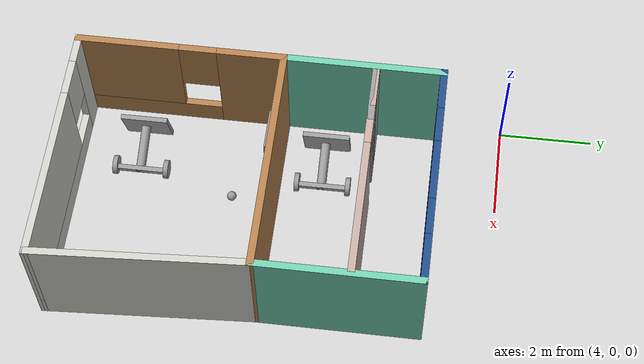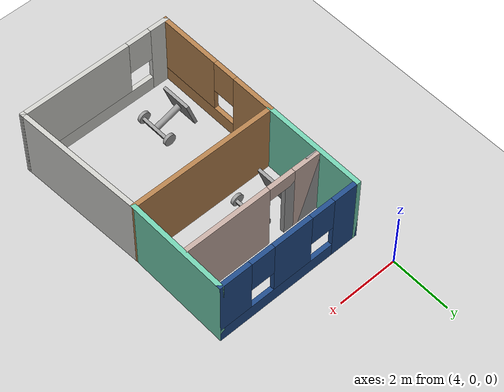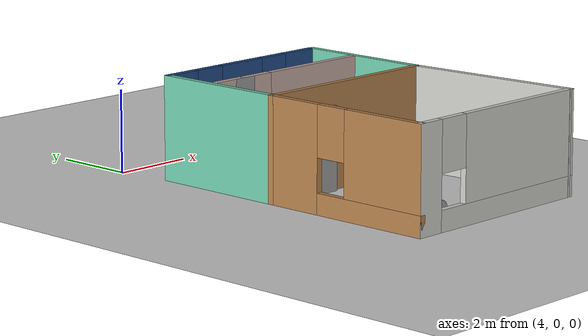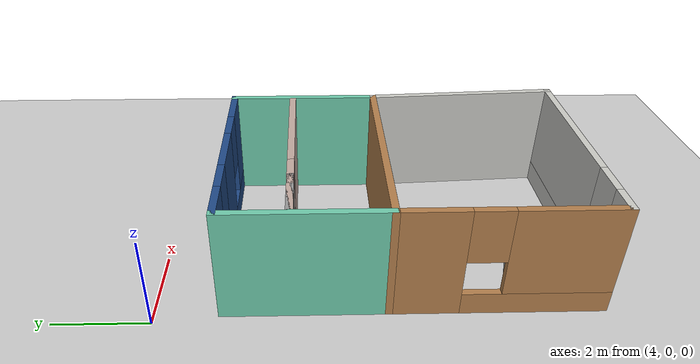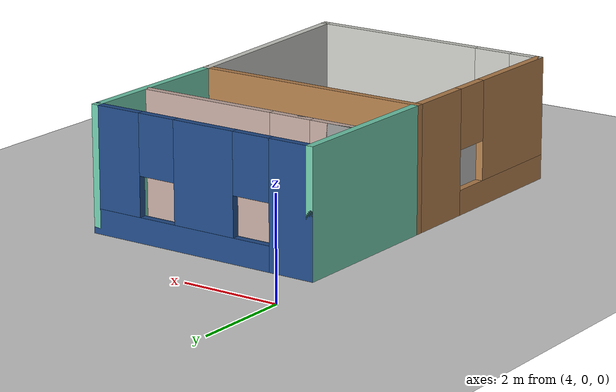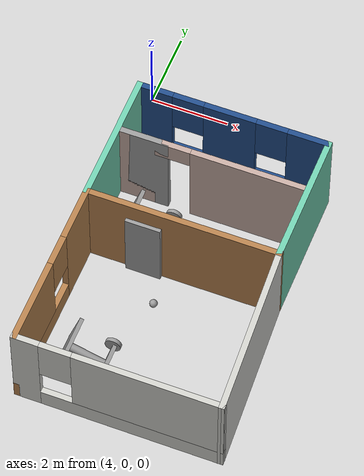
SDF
<sdf version="1.7">
 <world name="default">
  <plugin name="welcome" filename="libwelcome.so"/>
  <light name="sun" type="directional">
   <pose>0 0 10 0 -0 0</pose>
   <diffuse>0.8 0.8 0.8 1</diffuse>
   <specular>0.2 0.2 0.2 1</specular>
   <attenuation>
    <range>1000</range>
    <constant>0.9</constant>
    <linear>0.01</linear>
    <quadratic>0.001</quadratic>
   </attenuation>
   <direction>-0.5 0.1 -0.9</direction>
   <spot><inner_angle>0</inner_angle><outer_angle>0</outer_angle><falloff>0</falloff></spot>
  </light>
  <model name="ground_plane">
   <static>1</static>
   <link name="link">
    <collision name="collision">
     <geometry><plane><normal>0 0 1</normal><size>100 100</size></plane></geometry>
     <surface>
      <contact><collide_bitmask>65535</collide_bitmask></contact>
      <friction><ode><mu>100</mu><mu2>50</mu2></ode></friction>
     </surface>
    </collision>
    <visual name="visual">
     <cast_shadows>0</cast_shadows>
     <geometry><plane><normal>0 0 1</normal><size>100 100</size></plane></geometry>
     <material>
      <script><uri>file://media/materials/scripts/gazebo.material</uri><name>Gazebo/Grey</name></script>
     </material>
    </visual>
   </link>
  </model>
  <gravity>0 0 -9.8</gravity>
  <magnetic_field>6e-06 2.3e-05 -4.2e-05</magnetic_field>
  <atmosphere type="adiabatic"/>
  <physics type="ode">
   <max_step_size>0.001</max_step_size>
   <real_time_factor>1</real_time_factor>
   <real_time_update_rate>1000</real_time_update_rate>
  </physics>
  <scene><ambient>0.4 0.4 0.4 1</ambient><background>0.7 0.7 0.7 1</background><shadows>1</shadows></scene>
  <spherical_coordinates>
   <surface_model>EARTH_WGS84</surface_model>
   <latitude_deg>0</latitude_deg>
   <longitude_deg>0</longitude_deg>
   <elevation>0</elevation>
   <heading_deg>0</heading_deg>
  </spherical_coordinates>
  <model name="model_0">
   <link name="link_0">
    <inertial>
     <mass>1</mass>
     <inertia>
      <ixx>0.166667</ixx>
      <ixy>0</ixy>
      <ixz>0</ixz>
      <iyy>0.166667</iyy>
      <iyz>0</iyz>
      <izz>0.166667</izz>
     </inertia>
    </inertial>
    <pose>0.008 0.004 0.692007 0 -0 0</pose>
    <visual name="visual">
     <geometry><box><size>1 1 0.1</size></box></geometry>
     <material>
      <lighting>1</lighting>
      <script><uri>file://media/materials/scripts/gazebo.material</uri><name>Gazebo/Grey</name></script>
      <shader type="pixel"><normal_map>__default__</normal_map></shader>
      <ambient>0.3 0.3 0.3 1</ambient>
      <diffuse>0.7 0.7 0.7 1</diffuse>
      <specular>0.01 0.01 0.01 1</specular>
      <emissive>0 0 0 1</emissive>
     </material>
    </visual>
    <collision name="collision">
     <geometry><box><size>1 1 0.1</size></box></geometry>
     <surface>
      <friction>
       <ode><mu>1</mu><mu2>1</mu2><fdir1>0 0 0</fdir1><slip1>0</slip1><slip2>0</slip2></ode>
       <torsional>
        <coefficient>1</coefficient>
        <patch_radius>0</patch_radius>
        <surface_radius>0</surface_radius>
        <use_patch_radius>1</use_patch_radius>
        <ode><slip>0</slip></ode>
       </torsional>
      </friction>
      <bounce><restitution_coefficient>0</restitution_coefficient><threshold>1e+06</threshold></bounce>
      <contact>
       <collide_without_contact>0</collide_without_contact>
       <collide_without_contact_bitmask>1</collide_without_contact_bitmask>
       <collide_bitmask>1</collide_bitmask>
       <ode>
        <soft_cfm>0</soft_cfm>
        <soft_erp>0.2</soft_erp>
        <kp>1e+13</kp>
        <kd>1</kd>
        <max_vel>0.01</max_vel>
        <min_depth>0</min_depth>
       </ode>
       <bullet>
        <split_impulse>1</split_impulse>
        <split_impulse_penetration_threshold>-0.01</split_impulse_penetration_threshold>
        <soft_cfm>0</soft_cfm>
        <soft_erp>0.2</soft_erp>
        <kp>1e+13</kp>
        <kd>1</kd>
       </bullet>
      </contact>
     </surface>
    </collision>
   </link>
   <link name="link_1">
    <inertial>
     <mass>1</mass>
     <inertia><ixx>0.145833</ixx><ixy>0</ixy><ixz>0</ixz><iyy>0.145833</iyy><iyz>0</iyz><izz>0.125</izz></inertia>
    </inertial>
    <pose>-0.012 -0.016 0.142007 0 -0 0</pose>
    <visual name="visual">
     <geometry><cylinder><radius>0.1</radius><length>1</length></cylinder></geometry>
     <material>
      <lighting>1</lighting>
      <script><uri>file://media/materials/scripts/gazebo.material</uri><name>Gazebo/Grey</name></script>
      <shader type="pixel"><normal_map>__default__</normal_map></shader>
      <ambient>0.3 0.3 0.3 1</ambient>
      <diffuse>0.7 0.7 0.7 1</diffuse>
      <specular>0.01 0.01 0.01 1</specular>
      <emissive>0 0 0 1</emissive>
     </material>
    </visual>
    <collision name="collision">
     <geometry><cylinder><radius>0.1</radius><length>1</length></cylinder></geometry>
     <surface>
      <friction>
       <ode><mu>1</mu><mu2>1</mu2><fdir1>0 0 0</fdir1><slip1>0</slip1><slip2>0</slip2></ode>
       <torsional>
        <coefficient>1</coefficient>
        <patch_radius>0</patch_radius>
        <surface_radius>0</surface_radius>
        <use_patch_radius>1</use_patch_radius>
        <ode><slip>0</slip></ode>
       </torsional>
      </friction>
      <bounce><restitution_coefficient>0</restitution_coefficient><threshold>1e+06</threshold></bounce>
      <contact>
       <collide_without_contact>0</collide_without_contact>
       <collide_without_contact_bitmask>1</collide_without_contact_bitmask>
       <collide_bitmask>1</collide_bitmask>
       <ode>
        <soft_cfm>0</soft_cfm>
        <soft_erp>0.2</soft_erp>
        <kp>1e+13</kp>
        <kd>1</kd>
        <max_vel>0.01</max_vel>
        <min_depth>0</min_depth>
       </ode>
       <bullet>
        <split_impulse>1</split_impulse>
        <split_impulse_penetration_threshold>-0.01</split_impulse_penetration_threshold>
        <soft_cfm>0</soft_cfm>
        <soft_erp>0.2</soft_erp>
        <kp>1e+13</kp>
        <kd>1</kd>
       </bullet>
      </contact>
     </surface>
    </collision>
   </link>
   <link name="link_2">
    <inertial>
     <mass>1</mass>
     <inertia>
      <ixx>0.166667</ixx>
      <ixy>0</ixy>
      <ixz>0</ixz>
      <iyy>0.166667</iyy>
      <iyz>0</iyz>
      <izz>0.166667</izz>
     </inertia>
    </inertial>
    <pose>-0.012 0.004 -0.307993 0 -0 0</pose>
    <visual name="visual">
     <geometry><box><size>0.2 1 0.1</size></box></geometry>
     <material>
      <lighting>1</lighting>
      <script><uri>file://media/materials/scripts/gazebo.material</uri><name>Gazebo/Grey</name></script>
      <shader type="pixel"><normal_map>__default__</normal_map></shader>
      <ambient>0.3 0.3 0.3 1</ambient>
      <diffuse>0.7 0.7 0.7 1</diffuse>
      <specular>0.01 0.01 0.01 1</specular>
      <emissive>0 0 0 1</emissive>
     </material>
    </visual>
    <collision name="collision">
     <geometry><box><size>0.2 1 0.1</size></box></geometry>
     <surface>
      <friction>
       <ode><mu>1</mu><mu2>1</mu2><fdir1>0 0 0</fdir1><slip1>0</slip1><slip2>0</slip2></ode>
       <torsional>
        <coefficient>1</coefficient>
        <patch_radius>0</patch_radius>
        <surface_radius>0</surface_radius>
        <use_patch_radius>1</use_patch_radius>
        <ode><slip>0</slip></ode>
       </torsional>
      </friction>
      <bounce><restitution_coefficient>0</restitution_coefficient><threshold>1e+06</threshold></bounce>
      <contact>
       <collide_without_contact>0</collide_without_contact>
       <collide_without_contact_bitmask>1</collide_without_contact_bitmask>
       <collide_bitmask>1</collide_bitmask>
       <ode>
        <soft_cfm>0</soft_cfm>
        <soft_erp>0.2</soft_erp>
        <kp>1e+13</kp>
        <kd>1</kd>
        <max_vel>0.01</max_vel>
        <min_depth>0</min_depth>
       </ode>
       <bullet>
        <split_impulse>1</split_impulse>
        <split_impulse_penetration_threshold>-0.01</split_impulse_penetration_threshold>
        <soft_cfm>0</soft_cfm>
        <soft_erp>0.2</soft_erp>
        <kp>1e+13</kp>
        <kd>1</kd>
       </bullet>
      </contact>
     </surface>
    </collision>
   </link>
   <link name="link_3">
    <inertial>
     <mass>1</mass>
     <inertia><ixx>0.145833</ixx><ixy>0</ixy><ixz>0</ixz><iyy>0.145833</iyy><iyz>0</iyz><izz>0.125</izz></inertia>
     <pose>0 0 0 1.57 -0 0</pose>
    </inertial>
    <pose>0.008 -0.546159 -0.263029 1.57 -0 0</pose>
    <visual name="visual">
     <geometry><cylinder><radius>0.2</radius><length>0.1</length></cylinder></geometry>
     <material>
      <lighting>1</lighting>
      <script><uri>file://media/materials/scripts/gazebo.material</uri><name>Gazebo/Grey</name></script>
      <shader type="pixel"><normal_map>__default__</normal_map></shader>
      <ambient>0.3 0.3 0.3 1</ambient>
      <diffuse>0.7 0.7 0.7 1</diffuse>
      <specular>0.01 0.01 0.01 1</specular>
      <emissive>0 0 0 1</emissive>
     </material>
    </visual>
    <collision name="collision">
     <geometry><cylinder><radius>0.2</radius><length>0.1</length></cylinder></geometry>
     <surface>
      <friction>
       <ode><mu>1</mu><mu2>1</mu2><fdir1>0 0 0</fdir1><slip1>0</slip1><slip2>0</slip2></ode>
       <torsional>
        <coefficient>1</coefficient>
        <patch_radius>0</patch_radius>
        <surface_radius>0</surface_radius>
        <use_patch_radius>1</use_patch_radius>
        <ode><slip>0</slip></ode>
       </torsional>
      </friction>
      <bounce><restitution_coefficient>0</restitution_coefficient><threshold>1e+06</threshold></bounce>
      <contact>
       <collide_without_contact>0</collide_without_contact>
       <collide_without_contact_bitmask>1</collide_without_contact_bitmask>
       <collide_bitmask>1</collide_bitmask>
       <ode>
        <soft_cfm>0</soft_cfm>
        <soft_erp>0.2</soft_erp>
        <kp>1e+13</kp>
        <kd>1</kd>
        <max_vel>0.01</max_vel>
        <min_depth>0</min_depth>
       </ode>
       <bullet>
        <split_impulse>1</split_impulse>
        <split_impulse_penetration_threshold>-0.01</split_impulse_penetration_threshold>
        <soft_cfm>0</soft_cfm>
        <soft_erp>0.2</soft_erp>
        <kp>1e+13</kp>
        <kd>1</kd>
       </bullet>
      </contact>
     </surface>
    </collision>
   </link>
   <link name="link_3_clone">
    <inertial>
     <mass>1</mass>
     <inertia><ixx>0.145833</ixx><ixy>0</ixy><ixz>0</ixz><iyy>0.145833</iyy><iyz>0</iyz><izz>0.125</izz></inertia>
    </inertial>
    <pose>0.008 0.554159 -0.262993 1.57 -0 0</pose>
    <visual name="visual">
     <geometry><cylinder><radius>0.2</radius><length>0.1</length></cylinder></geometry>
     <material>
      <lighting>1</lighting>
      <script><uri>file://media/materials/scripts/gazebo.material</uri><name>Gazebo/Grey</name></script>
      <shader type="pixel"><normal_map>__default__</normal_map></shader>
      <ambient>0.3 0.3 0.3 1</ambient>
      <diffuse>0.7 0.7 0.7 1</diffuse>
      <specular>0.01 0.01 0.01 1</specular>
      <emissive>0 0 0 1</emissive>
     </material>
    </visual>
    <collision name="collision">
     <geometry><cylinder><radius>0.2</radius><length>0.1</length></cylinder></geometry>
     <surface>
      <friction>
       <ode><mu>1</mu><mu2>1</mu2><fdir1>0 0 0</fdir1><slip1>0</slip1><slip2>0</slip2></ode>
       <torsional>
        <coefficient>1</coefficient>
        <patch_radius>0</patch_radius>
        <surface_radius>0</surface_radius>
        <use_patch_radius>1</use_patch_radius>
        <ode><slip>0</slip></ode>
       </torsional>
      </friction>
      <bounce><restitution_coefficient>0</restitution_coefficient><threshold>1e+06</threshold></bounce>
      <contact>
       <collide_without_contact>0</collide_without_contact>
       <collide_without_contact_bitmask>1</collide_without_contact_bitmask>
       <collide_bitmask>1</collide_bitmask>
       <ode>
        <soft_cfm>0</soft_cfm>
        <soft_erp>0.2</soft_erp>
        <kp>1e+13</kp>
        <kd>1</kd>
        <max_vel>0.01</max_vel>
        <min_depth>0</min_depth>
       </ode>
       <bullet>
        <split_impulse>1</split_impulse>
        <split_impulse_penetration_threshold>-0.01</split_impulse_penetration_threshold>
        <soft_cfm>0</soft_cfm>
        <soft_erp>0.2</soft_erp>
        <kp>1e+13</kp>
        <kd>1</kd>
       </bullet>
      </contact>
     </surface>
    </collision>
   </link>
   <joint name="link_0_JOINT_0" type="fixed">
    <parent>link_0</parent>
    <child>link_1</child>
    <pose>0 0 0 0 -0.01 0</pose>
    <physics>
     <ode><limit><cfm>0</cfm><erp>0.2</erp></limit><suspension><cfm>0</cfm><erp>0.2</erp></suspension></ode>
    </physics>
   </joint>
   <joint name="link_1_JOINT_1" type="fixed">
    <parent>link_1</parent>
    <child>link_2</child>
    <physics>
     <ode><limit><cfm>0</cfm><erp>0.2</erp></limit><suspension><cfm>0</cfm><erp>0.2</erp></suspension></ode>
    </physics>
   </joint>
   <joint name="link_2_JOINT_3" type="revolute">
    <parent>link_2</parent>
    <child>link_3</child>
    <axis>
     <xyz>0 0 1</xyz>
     <limit>
      <lower>-1.79769e+308</lower>
      <upper>1.79769e+308</upper>
      <effort>-1</effort>
      <velocity>-1</velocity>
     </limit>
     <dynamics>
      <spring_reference>0</spring_reference>
      <spring_stiffness>0</spring_stiffness>
      <damping>0</damping>
     </dynamics>
    </axis>
    <physics>
     <ode><limit><cfm>0</cfm><erp>0.2</erp></limit><suspension><cfm>0</cfm><erp>0.2</erp></suspension></ode>
    </physics>
   </joint>
   <joint name="link_2_JOINT_4" type="revolute">
    <parent>link_2</parent>
    <child>link_3_clone</child>
    <axis>
     <xyz>0 0 1</xyz>
     <limit>
      <lower>-1.79769e+308</lower>
      <upper>1.79769e+308</upper>
      <effort>-1</effort>
      <velocity>-1</velocity>
     </limit>
     <dynamics>
      <spring_reference>0</spring_reference>
      <spring_stiffness>0</spring_stiffness>
      <damping>0</damping>
     </dynamics>
    </axis>
    <physics>
     <ode><limit><cfm>0</cfm><erp>0.2</erp></limit><suspension><cfm>0</cfm><erp>0.2</erp></suspension></ode>
    </physics>
   </joint>
   <static>0</static>
   <pose>5.60332 -7.69641 0.272645 -2.9e-05 -1.26073 0.004531</pose>
  </model>
  <model name="model">
   <pose>6.78089 -4.87878 0 0 -0 0</pose>
   <link name="Door_1">
    <collision name="Door_1_Collision">
     <geometry><box><size>0.9 0.17 2</size></box></geometry>
     <pose>0 0 1 0 -0 0</pose>
    </collision>
    <visual name="Door_1_Visual">
     <pose>0 0 1 0 -0 0</pose>
     <geometry><box><size>0.9 0.17 2</size></box></geometry>
     <material>
      <script><uri>file://media/materials/scripts/gazebo.material</uri><name>Gazebo/Grey</name></script>
     </material>
    </visual>
    <pose>-1.07562 0.060898 0 0 -0 0</pose>
   </link>
   <link name="Wall_0">
    <pose>-0.12709 3.49959 0 0 -0 0</pose>
    <visual name="Wall_0_Visual_0">
     <pose>-2.02192 0 1.25 0 -0 0</pose>
     <geometry><box><size>0.956165 0.15 2.5</size></box></geometry>
     <material>
      <script><uri>file://media/materials/scripts/gazebo.material</uri><name>Gazebo/Grey</name></script>
      <ambient>0.12549 0.290196 0.529412 1</ambient>
     </material>
     <meta><layer>0</layer></meta>
    </visual>
    <collision name="Wall_0_Collision_0">
     <geometry><box><size>0.956165 0.15 2.5</size></box></geometry>
     <pose>-2.02192 0 1.25 0 -0 0</pose>
    </collision>
    <visual name="Wall_0_Visual_1">
     <pose>0.478083 0 0.25 0 -0 0</pose>
     <geometry><box><size>4.04383 0.15 0.5</size></box></geometry>
     <material>
      <script><uri>file://media/materials/scripts/gazebo.material</uri><name>Gazebo/Grey</name></script>
      <ambient>0.12549 0.290196 0.529412 1</ambient>
     </material>
     <meta><layer>0</layer></meta>
    </visual>
    <collision name="Wall_0_Collision_1">
     <geometry><box><size>4.04383 0.15 0.5</size></box></geometry>
     <pose>0.478083 0 0.25 0 -0 0</pose>
    </collision>
    <visual name="Wall_0_Visual_2">
     <pose>-0.073177 0 1.5 0 -0 0</pose>
     <geometry><box><size>1.34132 0.15 2</size></box></geometry>
     <material>
      <script><uri>file://media/materials/scripts/gazebo.material</uri><name>Gazebo/Grey</name></script>
      <ambient>0.12549 0.290196 0.529412 1</ambient>
     </material>
     <meta><layer>0</layer></meta>
    </visual>
    <collision name="Wall_0_Collision_2">
     <geometry><box><size>1.34132 0.15 2</size></box></geometry>
     <pose>-0.073177 0 1.5 0 -0 0</pose>
    </collision>
    <visual name="Wall_0_Visual_3">
     <pose>1.94874 0 1.5 0 -0 0</pose>
     <geometry><box><size>1.10252 0.15 2</size></box></geometry>
     <material>
      <script><uri>file://media/materials/scripts/gazebo.material</uri><name>Gazebo/Grey</name></script>
      <ambient>0.12549 0.290196 0.529412 1</ambient>
     </material>
     <meta><layer>0</layer></meta>
    </visual>
    <collision name="Wall_0_Collision_3">
     <geometry><box><size>1.10252 0.15 2</size></box></geometry>
     <pose>1.94874 0 1.5 0 -0 0</pose>
    </collision>
    <visual name="Wall_0_Visual_4">
     <pose>-1.14383 0 1.9 0 -0 0</pose>
     <geometry><box><size>0.8 0.15 1.2</size></box></geometry>
     <material>
      <script><uri>file://media/materials/scripts/gazebo.material</uri><name>Gazebo/Grey</name></script>
      <ambient>0.12549 0.290196 0.529412 1</ambient>
     </material>
     <meta><layer>0</layer></meta>
    </visual>
    <collision name="Wall_0_Collision_4">
     <geometry><box><size>0.8 0.15 1.2</size></box></geometry>
     <pose>-1.14383 0 1.9 0 -0 0</pose>
    </collision>
    <visual name="Wall_0_Visual_5">
     <pose>0.997481 0 1.9 0 -0 0</pose>
     <geometry><box><size>0.8 0.15 1.2</size></box></geometry>
     <material>
      <script><uri>file://media/materials/scripts/gazebo.material</uri><name>Gazebo/Grey</name></script>
      <ambient>0.12549 0.290196 0.529412 1</ambient>
     </material>
     <meta><layer>0</layer></meta>
    </visual>
    <collision name="Wall_0_Collision_5">
     <geometry><box><size>0.8 0.15 1.2</size></box></geometry>
     <pose>0.997481 0 1.9 0 -0 0</pose>
    </collision>
   </link>
   <link name="Wall_1">
    <collision name="Wall_1_Collision">
     <geometry><box><size>3.5 0.15 2.5</size></box></geometry>
     <pose>0 0 1.25 0 -0 0</pose>
    </collision>
    <visual name="Wall_1_Visual">
     <pose>0 0 1.25 0 -0 0</pose>
     <geometry><box><size>3.5 0.15 2.5</size></box></geometry>
     <material>
      <script><uri>file://media/materials/scripts/gazebo.material</uri><name>Gazebo/Grey</name></script>
      <ambient>0.435294 0.796078 0.67451 1</ambient>
     </material>
     <meta><layer>0</layer></meta>
    </visual>
    <pose>2.29791 1.82459 0 0 -0 -1.5708</pose>
   </link>
   <link name="Wall_12">
    <pose>-0.00209 -4.20041 0 0 -0 0</pose>
    <visual name="Wall_12_Visual_0">
     <pose>-2.28061 0 1.25 0 -0 0</pose>
     <geometry><box><size>0.688775 0.15 2.5</size></box></geometry>
     <material>
      <script><uri>file://media/materials/scripts/gazebo.material</uri><name>Gazebo/CeilingTiled</name></script>
      <ambient>0.996078 0.47451 0.0196078 1</ambient>
     </material>
     <meta><layer>0</layer></meta>
    </visual>
    <collision name="Wall_12_Collision_0">
     <geometry><box><size>0.688775 0.15 2.5</size></box></geometry>
     <pose>-2.28061 0 1.25 0 -0 0</pose>
    </collision>
    <visual name="Wall_12_Visual_1">
     <pose>0.344388 0 0.25 0 -0 0</pose>
     <geometry><box><size>4.56123 0.15 0.5</size></box></geometry>
     <material>
      <script><uri>file://media/materials/scripts/gazebo.material</uri><name>Gazebo/CeilingTiled</name></script>
      <ambient>0.996078 0.47451 0.0196078 1</ambient>
     </material>
     <meta><layer>0</layer></meta>
    </visual>
    <collision name="Wall_12_Collision_1">
     <geometry><box><size>4.56123 0.15 0.5</size></box></geometry>
     <pose>0.344388 0 0.25 0 -0 0</pose>
    </collision>
    <visual name="Wall_12_Visual_2">
     <pose>0.744388 0 1.5 0 -0 0</pose>
     <geometry><box><size>3.76123 0.15 2</size></box></geometry>
     <material>
      <script><uri>file://media/materials/scripts/gazebo.material</uri><name>Gazebo/CeilingTiled</name></script>
      <ambient>0.996078 0.47451 0.0196078 1</ambient>
     </material>
     <meta><layer>0</layer></meta>
    </visual>
    <collision name="Wall_12_Collision_2">
     <geometry><box><size>3.76123 0.15 2</size></box></geometry>
     <pose>0.744388 0 1.5 0 -0 0</pose>
    </collision>
    <visual name="Wall_12_Visual_3">
     <pose>-1.53622 0 1.9 0 -0 0</pose>
     <geometry><box><size>0.8 0.15 1.2</size></box></geometry>
     <material>
      <script><uri>file://media/materials/scripts/gazebo.material</uri><name>Gazebo/CeilingTiled</name></script>
      <ambient>0.996078 0.47451 0.0196078 1</ambient>
     </material>
     <meta><layer>0</layer></meta>
    </visual>
    <collision name="Wall_12_Collision_3">
     <geometry><box><size>0.8 0.15 1.2</size></box></geometry>
     <pose>-1.53622 0 1.9 0 -0 0</pose>
    </collision>
   </link>
   <link name="Wall_13">
    <collision name="Wall_13_Collision">
     <geometry><box><size>4.50718 0.15 2.5</size></box></geometry>
     <pose>0 0 1.25 0 -0 0</pose>
    </collision>
    <visual name="Wall_13_Visual">
     <pose>0 0 1.25 0 -0 0</pose>
     <geometry><box><size>4.50718 0.15 2.5</size></box></geometry>
     <material>
      <script><uri>file://media/materials/scripts/gazebo.material</uri><name>Gazebo/CeilingTiled</name></script>
      <ambient>0.996078 0.47451 0.0196078 1</ambient>
     </material>
     <meta><layer>0</layer></meta>
    </visual>
    <pose>2.42291 -2.02541 0 0 -0 1.6282</pose>
   </link>
   <link name="Wall_2">
    <collision name="Wall_2_Collision">
     <geometry><box><size>5 0.15 2.5</size></box></geometry>
     <pose>0 0 1.25 0 -0 0</pose>
    </collision>
    <visual name="Wall_2_Visual">
     <pose>0 0 1.25 0 -0 0</pose>
     <geometry><box><size>5 0.15 2.5</size></box></geometry>
     <material>
      <script><uri>file://media/materials/scripts/gazebo.material</uri><name>Gazebo/Wood</name></script>
      <ambient>0.435294 0.796078 0.67451 1</ambient>
     </material>
     <meta><layer>0</layer></meta>
    </visual>
    <pose>-0.12709 0.14959 0 0 -0 3.14159</pose>
   </link>
   <link name="Wall_3">
    <collision name="Wall_3_Collision">
     <geometry><box><size>3.5 0.15 2.5</size></box></geometry>
     <pose>0 0 1.25 0 -0 0</pose>
    </collision>
    <visual name="Wall_3_Visual">
     <pose>0 0 1.25 0 -0 0</pose>
     <geometry><box><size>3.5 0.15 2.5</size></box></geometry>
     <material>
      <script><uri>file://media/materials/scripts/gazebo.material</uri><name>Gazebo/Grey</name></script>
      <ambient>0.435294 0.796078 0.67451 1</ambient>
     </material>
     <meta><layer>0</layer></meta>
    </visual>
    <pose>-2.55209 1.82459 0 0 -0 1.5708</pose>
   </link>
   <link name="Wall_5">
    <collision name="Wall_5_Collision">
     <geometry><box><size>1.25 0.15 2.5</size></box></geometry>
     <pose>0 0 1.25 0 -0 0</pose>
    </collision>
    <visual name="Wall_5_Visual">
     <pose>0 0 1.25 0 -0 0</pose>
     <geometry><box><size>1.25 0.15 2.5</size></box></geometry>
     <material>
      <script><uri>file://media/materials/scripts/gazebo.material</uri><name>Gazebo/Grey</name></script>
      <ambient>1 1 1 1</ambient>
     </material>
     <meta><layer>0</layer></meta>
    </visual>
    <pose>-1.85152 2.09583 0 0 -0 3.14159</pose>
   </link>
   <link name="Wall_6">
    <pose>-0.101515 2.09583 0 0 -0 0</pose>
    <visual name="Wall_6_Visual_0">
     <pose>-1.92073 0 1.25 0 -0 0</pose>
     <geometry><box><size>0.908541 0.15 2.5</size></box></geometry>
     <material>
      <script><uri>file://media/materials/scripts/gazebo.material</uri><name>Gazebo/Grey</name></script>
      <ambient>0.760784 0.662745 0.627451 1</ambient>
     </material>
     <meta><layer>0</layer></meta>
    </visual>
    <collision name="Wall_6_Collision_0">
     <geometry><box><size>0.908541 0.15 2.5</size></box></geometry>
     <pose>-1.92073 0 1.25 0 -0 0</pose>
    </collision>
    <visual name="Wall_6_Visual_1">
     <pose>0.904271 0 1.25 0 -0 0</pose>
     <geometry><box><size>2.94146 0.15 2.5</size></box></geometry>
     <material>
      <script><uri>file://media/materials/scripts/gazebo.material</uri><name>Gazebo/Grey</name></script>
      <ambient>0.760784 0.662745 0.627451 1</ambient>
     </material>
     <meta><layer>0</layer></meta>
    </visual>
    <collision name="Wall_6_Collision_1">
     <geometry><box><size>2.94146 0.15 2.5</size></box></geometry>
     <pose>0.904271 0 1.25 0 -0 0</pose>
    </collision>
    <visual name="Wall_6_Visual_2">
     <pose>-1.01646 0 2.25 0 -0 0</pose>
     <geometry><box><size>0.9 0.15 0.5</size></box></geometry>
     <material>
      <script><uri>file://media/materials/scripts/gazebo.material</uri><name>Gazebo/Grey</name></script>
      <ambient>0.760784 0.662745 0.627451 1</ambient>
     </material>
     <meta><layer>0</layer></meta>
    </visual>
    <collision name="Wall_6_Collision_2">
     <geometry><box><size>0.9 0.15 0.5</size></box></geometry>
     <pose>-1.01646 0 2.25 0 -0 0</pose>
    </collision>
   </link>
   <link name="Wall_8">
    <pose>-2.55209 -2.02541 0 0 -0 -1.5708</pose>
    <visual name="Wall_8_Visual_0">
     <pose>-1.50477 0 1.25 0 -0 0</pose>
     <geometry><box><size>1.49045 0.15 2.5</size></box></geometry>
     <material>
      <script><uri>file://media/materials/scripts/gazebo.material</uri><name>Gazebo/Wood</name></script>
      <ambient>0.996078 0.47451 0.0196078 1</ambient>
     </material>
     <meta><layer>0</layer></meta>
    </visual>
    <collision name="Wall_8_Collision_0">
     <geometry><box><size>1.49045 0.15 2.5</size></box></geometry>
     <pose>-1.50477 0 1.25 0 -0 0</pose>
    </collision>
    <visual name="Wall_8_Visual_1">
     <pose>0.745225 0 0.25 0 -0 0</pose>
     <geometry><box><size>3.00955 0.15 0.5</size></box></geometry>
     <material>
      <script><uri>file://media/materials/scripts/gazebo.material</uri><name>Gazebo/Wood</name></script>
      <ambient>0.996078 0.47451 0.0196078 1</ambient>
     </material>
     <meta><layer>0</layer></meta>
    </visual>
    <collision name="Wall_8_Collision_1">
     <geometry><box><size>3.00955 0.15 0.5</size></box></geometry>
     <pose>0.745225 0 0.25 0 -0 0</pose>
    </collision>
    <visual name="Wall_8_Visual_2">
     <pose>1.14522 0 1.5 0 -0 0</pose>
     <geometry><box><size>2.20955 0.15 2</size></box></geometry>
     <material>
      <script><uri>file://media/materials/scripts/gazebo.material</uri><name>Gazebo/Wood</name></script>
      <ambient>0.996078 0.47451 0.0196078 1</ambient>
     </material>
     <meta><layer>0</layer></meta>
    </visual>
    <collision name="Wall_8_Collision_2">
     <geometry><box><size>2.20955 0.15 2</size></box></geometry>
     <pose>1.14522 0 1.5 0 -0 0</pose>
    </collision>
    <visual name="Wall_8_Visual_3">
     <pose>-0.35955 0 1.9 0 -0 0</pose>
     <geometry><box><size>0.8 0.15 1.2</size></box></geometry>
     <material>
      <script><uri>file://media/materials/scripts/gazebo.material</uri><name>Gazebo/Wood</name></script>
      <ambient>0.996078 0.47451 0.0196078 1</ambient>
     </material>
     <meta><layer>0</layer></meta>
    </visual>
    <collision name="Wall_8_Collision_3">
     <geometry><box><size>0.8 0.15 1.2</size></box></geometry>
     <pose>-0.35955 0 1.9 0 -0 0</pose>
    </collision>
   </link>
   <static>1</static>
  </model>
  <model name="model_0_clone">
   <link name="link_0">
    <inertial>
     <mass>1</mass>
     <inertia>
      <ixx>0.166667</ixx>
      <ixy>0</ixy>
      <ixz>0</ixz>
      <iyy>0.166667</iyy>
      <iyz>0</iyz>
      <izz>0.166667</izz>
     </inertia>
    </inertial>
    <pose>0.008 0.004 0.692007 0 -0 0</pose>
    <visual name="visual">
     <geometry><box><size>1 1 0.1</size></box></geometry>
     <material>
      <lighting>1</lighting>
      <script><uri>file://media/materials/scripts/gazebo.material</uri><name>Gazebo/Grey</name></script>
      <shader type="pixel"><normal_map>__default__</normal_map></shader>
      <ambient>0.3 0.3 0.3 1</ambient>
      <diffuse>0.7 0.7 0.7 1</diffuse>
      <specular>0.01 0.01 0.01 1</specular>
      <emissive>0 0 0 1</emissive>
     </material>
    </visual>
    <collision name="collision">
     <geometry><box><size>1 1 0.1</size></box></geometry>
     <surface>
      <friction>
       <ode><mu>1</mu><mu2>1</mu2><fdir1>0 0 0</fdir1><slip1>0</slip1><slip2>0</slip2></ode>
       <torsional>
        <coefficient>1</coefficient>
        <patch_radius>0</patch_radius>
        <surface_radius>0</surface_radius>
        <use_patch_radius>1</use_patch_radius>
        <ode><slip>0</slip></ode>
       </torsional>
      </friction>
      <bounce><restitution_coefficient>0</restitution_coefficient><threshold>1e+06</threshold></bounce>
      <contact>
       <collide_without_contact>0</collide_without_contact>
       <collide_without_contact_bitmask>1</collide_without_contact_bitmask>
       <collide_bitmask>1</collide_bitmask>
       <ode>
        <soft_cfm>0</soft_cfm>
        <soft_erp>0.2</soft_erp>
        <kp>1e+13</kp>
        <kd>1</kd>
        <max_vel>0.01</max_vel>
        <min_depth>0</min_depth>
       </ode>
       <bullet>
        <split_impulse>1</split_impulse>
        <split_impulse_penetration_threshold>-0.01</split_impulse_penetration_threshold>
        <soft_cfm>0</soft_cfm>
        <soft_erp>0.2</soft_erp>
        <kp>1e+13</kp>
        <kd>1</kd>
       </bullet>
      </contact>
     </surface>
    </collision>
   </link>
   <link name="link_1">
    <inertial>
     <mass>1</mass>
     <inertia><ixx>0.145833</ixx><ixy>0</ixy><ixz>0</ixz><iyy>0.145833</iyy><iyz>0</iyz><izz>0.125</izz></inertia>
    </inertial>
    <pose>-0.012 -0.016 0.142007 0 -0 0</pose>
    <visual name="visual">
     <geometry><cylinder><radius>0.1</radius><length>1</length></cylinder></geometry>
     <material>
      <lighting>1</lighting>
      <script><uri>file://media/materials/scripts/gazebo.material</uri><name>Gazebo/Grey</name></script>
      <shader type="pixel"><normal_map>__default__</normal_map></shader>
      <ambient>0.3 0.3 0.3 1</ambient>
      <diffuse>0.7 0.7 0.7 1</diffuse>
      <specular>0.01 0.01 0.01 1</specular>
      <emissive>0 0 0 1</emissive>
     </material>
    </visual>
    <collision name="collision">
     <geometry><cylinder><radius>0.1</radius><length>1</length></cylinder></geometry>
     <surface>
      <friction>
       <ode><mu>1</mu><mu2>1</mu2><fdir1>0 0 0</fdir1><slip1>0</slip1><slip2>0</slip2></ode>
       <torsional>
        <coefficient>1</coefficient>
        <patch_radius>0</patch_radius>
        <surface_radius>0</surface_radius>
        <use_patch_radius>1</use_patch_radius>
        <ode><slip>0</slip></ode>
       </torsional>
      </friction>
      <bounce><restitution_coefficient>0</restitution_coefficient><threshold>1e+06</threshold></bounce>
      <contact>
       <collide_without_contact>0</collide_without_contact>
       <collide_without_contact_bitmask>1</collide_without_contact_bitmask>
       <collide_bitmask>1</collide_bitmask>
       <ode>
        <soft_cfm>0</soft_cfm>
        <soft_erp>0.2</soft_erp>
        <kp>1e+13</kp>
        <kd>1</kd>
        <max_vel>0.01</max_vel>
        <min_depth>0</min_depth>
       </ode>
       <bullet>
        <split_impulse>1</split_impulse>
        <split_impulse_penetration_threshold>-0.01</split_impulse_penetration_threshold>
        <soft_cfm>0</soft_cfm>
        <soft_erp>0.2</soft_erp>
        <kp>1e+13</kp>
        <kd>1</kd>
       </bullet>
      </contact>
     </surface>
    </collision>
   </link>
   <link name="link_2">
    <inertial>
     <mass>1</mass>
     <inertia>
      <ixx>0.166667</ixx>
      <ixy>0</ixy>
      <ixz>0</ixz>
      <iyy>0.166667</iyy>
      <iyz>0</iyz>
      <izz>0.166667</izz>
     </inertia>
    </inertial>
    <pose>-0.012 0.004 -0.307993 0 -0 0</pose>
    <visual name="visual">
     <geometry><box><size>0.2 1 0.1</size></box></geometry>
     <material>
      <lighting>1</lighting>
      <script><uri>file://media/materials/scripts/gazebo.material</uri><name>Gazebo/Grey</name></script>
      <shader type="pixel"><normal_map>__default__</normal_map></shader>
      <ambient>0.3 0.3 0.3 1</ambient>
      <diffuse>0.7 0.7 0.7 1</diffuse>
      <specular>0.01 0.01 0.01 1</specular>
      <emissive>0 0 0 1</emissive>
     </material>
    </visual>
    <collision name="collision">
     <geometry><box><size>0.2 1 0.1</size></box></geometry>
     <surface>
      <friction>
       <ode><mu>1</mu><mu2>1</mu2><fdir1>0 0 0</fdir1><slip1>0</slip1><slip2>0</slip2></ode>
       <torsional>
        <coefficient>1</coefficient>
        <patch_radius>0</patch_radius>
        <surface_radius>0</surface_radius>
        <use_patch_radius>1</use_patch_radius>
        <ode><slip>0</slip></ode>
       </torsional>
      </friction>
      <bounce><restitution_coefficient>0</restitution_coefficient><threshold>1e+06</threshold></bounce>
      <contact>
       <collide_without_contact>0</collide_without_contact>
       <collide_without_contact_bitmask>1</collide_without_contact_bitmask>
       <collide_bitmask>1</collide_bitmask>
       <ode>
        <soft_cfm>0</soft_cfm>
        <soft_erp>0.2</soft_erp>
        <kp>1e+13</kp>
        <kd>1</kd>
        <max_vel>0.01</max_vel>
        <min_depth>0</min_depth>
       </ode>
       <bullet>
        <split_impulse>1</split_impulse>
        <split_impulse_penetration_threshold>-0.01</split_impulse_penetration_threshold>
        <soft_cfm>0</soft_cfm>
        <soft_erp>0.2</soft_erp>
        <kp>1e+13</kp>
        <kd>1</kd>
       </bullet>
      </contact>
     </surface>
    </collision>
   </link>
   <link name="link_3">
    <inertial>
     <mass>1</mass>
     <inertia><ixx>0.145833</ixx><ixy>0</ixy><ixz>0</ixz><iyy>0.145833</iyy><iyz>0</iyz><izz>0.125</izz></inertia>
     <pose>0 0 0 1.57 -0 0</pose>
    </inertial>
    <pose>0.008 -0.546159 -0.263029 1.57 -0 0</pose>
    <visual name="visual">
     <geometry><cylinder><radius>0.2</radius><length>0.1</length></cylinder></geometry>
     <material>
      <lighting>1</lighting>
      <script><uri>file://media/materials/scripts/gazebo.material</uri><name>Gazebo/Grey</name></script>
      <shader type="pixel"><normal_map>__default__</normal_map></shader>
      <ambient>0.3 0.3 0.3 1</ambient>
      <diffuse>0.7 0.7 0.7 1</diffuse>
      <specular>0.01 0.01 0.01 1</specular>
      <emissive>0 0 0 1</emissive>
     </material>
    </visual>
    <collision name="collision">
     <geometry><cylinder><radius>0.2</radius><length>0.1</length></cylinder></geometry>
     <surface>
      <friction>
       <ode><mu>1</mu><mu2>1</mu2><fdir1>0 0 0</fdir1><slip1>0</slip1><slip2>0</slip2></ode>
       <torsional>
        <coefficient>1</coefficient>
        <patch_radius>0</patch_radius>
        <surface_radius>0</surface_radius>
        <use_patch_radius>1</use_patch_radius>
        <ode><slip>0</slip></ode>
       </torsional>
      </friction>
      <bounce><restitution_coefficient>0</restitution_coefficient><threshold>1e+06</threshold></bounce>
      <contact>
       <collide_without_contact>0</collide_without_contact>
       <collide_without_contact_bitmask>1</collide_without_contact_bitmask>
       <collide_bitmask>1</collide_bitmask>
       <ode>
        <soft_cfm>0</soft_cfm>
        <soft_erp>0.2</soft_erp>
        <kp>1e+13</kp>
        <kd>1</kd>
        <max_vel>0.01</max_vel>
        <min_depth>0</min_depth>
       </ode>
       <bullet>
        <split_impulse>1</split_impulse>
        <split_impulse_penetration_threshold>-0.01</split_impulse_penetration_threshold>
        <soft_cfm>0</soft_cfm>
        <soft_erp>0.2</soft_erp>
        <kp>1e+13</kp>
        <kd>1</kd>
       </bullet>
      </contact>
     </surface>
    </collision>
   </link>
   <link name="link_3_clone">
    <inertial>
     <mass>1</mass>
     <inertia><ixx>0.145833</ixx><ixy>0</ixy><ixz>0</ixz><iyy>0.145833</iyy><iyz>0</iyz><izz>0.125</izz></inertia>
    </inertial>
    <pose>0.008 0.554159 -0.262993 1.57 -0 0</pose>
    <visual name="visual">
     <geometry><cylinder><radius>0.2</radius><length>0.1</length></cylinder></geometry>
     <material>
      <lighting>1</lighting>
      <script><uri>file://media/materials/scripts/gazebo.material</uri><name>Gazebo/Grey</name></script>
      <shader type="pixel"><normal_map>__default__</normal_map></shader>
      <ambient>0.3 0.3 0.3 1</ambient>
      <diffuse>0.7 0.7 0.7 1</diffuse>
      <specular>0.01 0.01 0.01 1</specular>
      <emissive>0 0 0 1</emissive>
     </material>
    </visual>
    <collision name="collision">
     <geometry><cylinder><radius>0.2</radius><length>0.1</length></cylinder></geometry>
     <surface>
      <friction>
       <ode><mu>1</mu><mu2>1</mu2><fdir1>0 0 0</fdir1><slip1>0</slip1><slip2>0</slip2></ode>
       <torsional>
        <coefficient>1</coefficient>
        <patch_radius>0</patch_radius>
        <surface_radius>0</surface_radius>
        <use_patch_radius>1</use_patch_radius>
        <ode><slip>0</slip></ode>
       </torsional>
      </friction>
      <bounce><restitution_coefficient>0</restitution_coefficient><threshold>1e+06</threshold></bounce>
      <contact>
       <collide_without_contact>0</collide_without_contact>
       <collide_without_contact_bitmask>1</collide_without_contact_bitmask>
       <collide_bitmask>1</collide_bitmask>
       <ode>
        <soft_cfm>0</soft_cfm>
        <soft_erp>0.2</soft_erp>
        <kp>1e+13</kp>
        <kd>1</kd>
        <max_vel>0.01</max_vel>
        <min_depth>0</min_depth>
       </ode>
       <bullet>
        <split_impulse>1</split_impulse>
        <split_impulse_penetration_threshold>-0.01</split_impulse_penetration_threshold>
        <soft_cfm>0</soft_cfm>
        <soft_erp>0.2</soft_erp>
        <kp>1e+13</kp>
        <kd>1</kd>
       </bullet>
      </contact>
     </surface>
    </collision>
   </link>
   <joint name="link_0_JOINT_0" type="fixed">
    <parent>link_0</parent>
    <child>link_1</child>
    <pose>0 0 0 0 -0.01 0</pose>
    <physics>
     <ode><limit><cfm>0</cfm><erp>0.2</erp></limit><suspension><cfm>0</cfm><erp>0.2</erp></suspension></ode>
    </physics>
   </joint>
   <joint name="link_1_JOINT_1" type="fixed">
    <parent>link_1</parent>
    <child>link_2</child>
    <physics>
     <ode><limit><cfm>0</cfm><erp>0.2</erp></limit><suspension><cfm>0</cfm><erp>0.2</erp></suspension></ode>
    </physics>
   </joint>
   <joint name="link_2_JOINT_3" type="revolute">
    <parent>link_2</parent>
    <child>link_3</child>
    <axis>
     <xyz>0 0 1</xyz>
     <limit>
      <lower>-1.79769e+308</lower>
      <upper>1.79769e+308</upper>
      <effort>-1</effort>
      <velocity>-1</velocity>
     </limit>
     <dynamics>
      <spring_reference>0</spring_reference>
      <spring_stiffness>0</spring_stiffness>
      <damping>0</damping>
     </dynamics>
    </axis>
    <physics>
     <ode><limit><cfm>0</cfm><erp>0.2</erp></limit><suspension><cfm>0</cfm><erp>0.2</erp></suspension></ode>
    </physics>
   </joint>
   <joint name="link_2_JOINT_4" type="revolute">
    <parent>link_2</parent>
    <child>link_3_clone</child>
    <axis>
     <xyz>0 0 1</xyz>
     <limit>
      <lower>-1.79769e+308</lower>
      <upper>1.79769e+308</upper>
      <effort>-1</effort>
      <velocity>-1</velocity>
     </limit>
     <dynamics>
      <spring_reference>0</spring_reference>
      <spring_stiffness>0</spring_stiffness>
      <damping>0</damping>
     </dynamics>
    </axis>
    <physics>
     <ode><limit><cfm>0</cfm><erp>0.2</erp></limit><suspension><cfm>0</cfm><erp>0.2</erp></suspension></ode>
    </physics>
   </joint>
   <static>0</static>
   <pose>5.58594 -3.74708 0.272645 -2.9e-05 -1.26073 0.004531</pose>
  </model>
  <model name="whiteball">
   <link name="link_0">
    <inertial>
     <mass>1</mass>
     <inertia><ixx>0.1</ixx><ixy>0</ixy><ixz>0</ixz><iyy>0.1</iyy><iyz>0</iyz><izz>0.1</izz></inertia>
    </inertial>
    <visual name="visual">
     <geometry><sphere><radius>0.1</radius></sphere></geometry>
     <material>
      <lighting>1</lighting>
      <script><uri>file://media/materials/scripts/gazebo.material</uri><name>Gazebo/Grey</name></script>
      <shader type="pixel"><normal_map>__default__</normal_map></shader>
      <ambient>1 1 1 1</ambient>
      <diffuse>1 1 1 1</diffuse>
      <specular>1 1 1 1</specular>
      <emissive>1 1 1 1</emissive>
     </material>
    </visual>
    <collision name="collision">
     <geometry><sphere><radius>0.1</radius></sphere></geometry>
     <surface>
      <friction>
       <ode><mu>1</mu><mu2>1</mu2><fdir1>0 0 0</fdir1><slip1>0</slip1><slip2>0</slip2></ode>
       <torsional>
        <coefficient>1</coefficient>
        <patch_radius>0</patch_radius>
        <surface_radius>0</surface_radius>
        <use_patch_radius>1</use_patch_radius>
        <ode><slip>0</slip></ode>
       </torsional>
      </friction>
      <bounce><restitution_coefficient>0</restitution_coefficient><threshold>1e+06</threshold></bounce>
      <contact>
       <collide_without_contact>0</collide_without_contact>
       <collide_without_contact_bitmask>1</collide_without_contact_bitmask>
       <collide_bitmask>1</collide_bitmask>
       <ode>
        <soft_cfm>0</soft_cfm>
        <soft_erp>0.2</soft_erp>
        <kp>1e+13</kp>
        <kd>1</kd>
        <max_vel>0.01</max_vel>
        <min_depth>0</min_depth>
       </ode>
       <bullet>
        <split_impulse>1</split_impulse>
        <split_impulse_penetration_threshold>-0.01</split_impulse_penetration_threshold>
        <soft_cfm>0</soft_cfm>
        <soft_erp>0.2</soft_erp>
        <kp>1e+13</kp>
        <kd>1</kd>
       </bullet>
      </contact>
     </surface>
    </collision>
   </link>
   <static>0</static>
   <pose>6.28161 -5.65265 0.07793 0 -0 0</pose>
  </model>
 </world>
</sdf>
